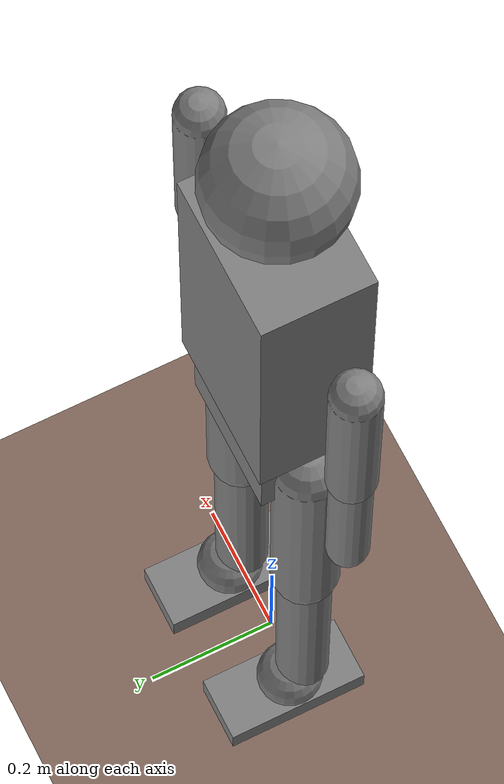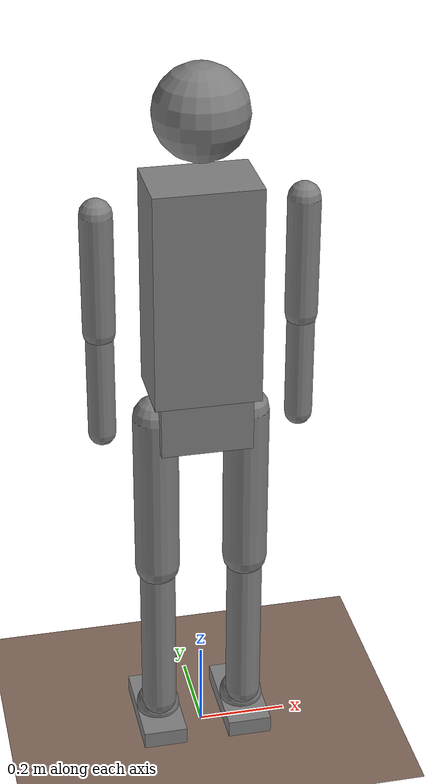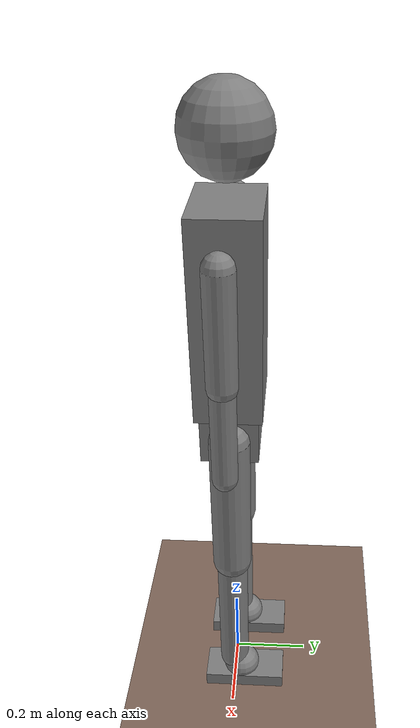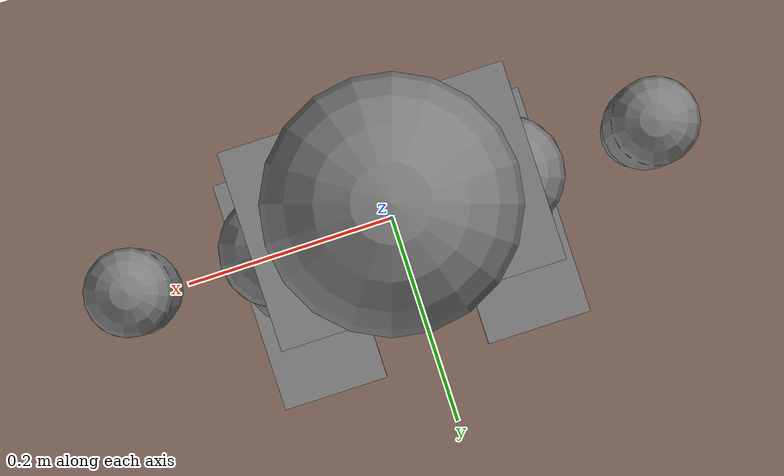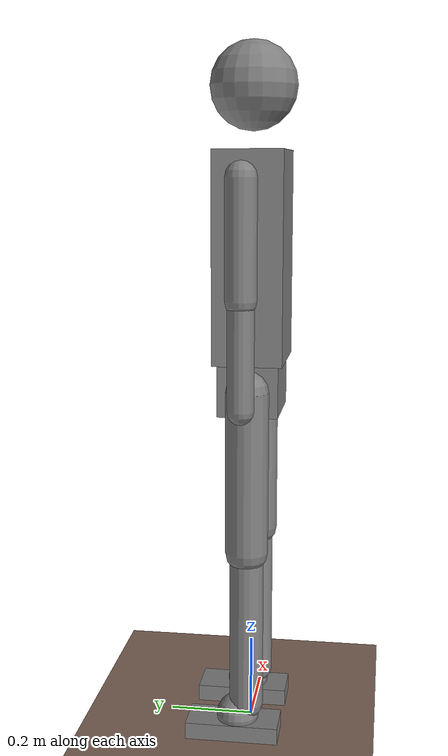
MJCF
<mujoco model="hab-bot-01-gait">
  <!-- angle=radian: MJCF defaults to DEGREES — leaving that would compile
       range="-1.5 1.5" as +/-1.5 deg and pin every joint at its limit -->
  <compiler angle="radian"/>
  <option gravity="0 0 -3.71" timestep="0.002"/>
  <default>
    <joint damping="1.2" armature="0.01"/>
    <geom friction="1.0 0.005 0.0001" density="900"/>
    <position kp="300" kv="18" forcerange="-150 150"/>
  </default>
  <worldbody>
    <geom name="floor" type="plane" size="20 20 0.1" rgba="0.5 0.4 0.35 1"/>
    <body name="pelvis" pos="0 0 0.84">
      <joint name="root_y" type="slide" axis="0 1 0" damping="0.5"/>
      <joint name="root_z" type="slide" axis="0 0 1" damping="2"/>
      <joint name="root_pitch" type="hinge" axis="1 0 0"
             stiffness="150" damping="30"/>
      <geom name="pelvis_g" type="box" size="0.10 0.07 0.06" mass="6"
            contype="0" conaffinity="0"/>
      <!-- torso + head: rigid with pelvis (visual torso pitch = root_pitch) -->
      <geom name="torso_g" type="box" size="0.115 0.08 0.24" pos="0 0 0.30"
            mass="14" contype="0" conaffinity="0"/>
      <geom name="head_g" type="sphere" size="0.10" pos="0 0 0.68" mass="3.5"
            contype="0" conaffinity="0"/>

      <!-- ============ legs (hip at z offset 0, thigh 0.38, shank 0.38) ==== -->
      <body name="thigh_L" pos="-0.10 0 0">
        <joint name="hip_L" type="hinge" axis="1 0 0" range="-1.2 1.2"/>
        <geom type="capsule" fromto="0 0 0  0 0 -0.38" size="0.05" mass="3.2"
              contype="0" conaffinity="0"/>
        <body name="shank_L" pos="0 0 -0.38">
          <joint name="knee_L" type="hinge" axis="1 0 0" range="-1.8 0.05"/>
          <geom type="capsule" fromto="0 0 0  0 0 -0.38" size="0.04" mass="2.2"
                contype="0" conaffinity="0"/>
          <body name="foot_L" pos="0 0 -0.38">
            <joint name="ank_L" type="hinge" axis="1 0 0" range="-0.8 0.8"/>
            <!-- round sole (point contact, can roll) breaks the flat-foot
                 closed-chain lock; box is visual-only -->
            <geom name="foot_L_g" type="sphere" size="0.05" pos="0 0.02 -0.03"
                  mass="0.9"/>
            <geom type="box" size="0.05 0.11 0.02" pos="0 0.03 -0.06" mass="0.05"
                  contype="0" conaffinity="0"/>
          </body>
        </body>
      </body>
      <body name="thigh_R" pos="0.10 0 0">
        <joint name="hip_R" type="hinge" axis="1 0 0" range="-1.2 1.2"/>
        <geom type="capsule" fromto="0 0 0  0 0 -0.38" size="0.05" mass="3.2"
              contype="0" conaffinity="0"/>
        <body name="shank_R" pos="0 0 -0.38">
          <joint name="knee_R" type="hinge" axis="1 0 0" range="-1.8 0.05"/>
          <geom type="capsule" fromto="0 0 0  0 0 -0.38" size="0.04" mass="2.2"
                contype="0" conaffinity="0"/>
          <body name="foot_R" pos="0 0 -0.38">
            <joint name="ank_R" type="hinge" axis="1 0 0" range="-0.8 0.8"/>
            <geom name="foot_R_g" type="sphere" size="0.05" pos="0 0.02 -0.03"
                  mass="0.9"/>
            <geom type="box" size="0.05 0.11 0.02" pos="0 0.03 -0.06" mass="0.05"
                  contype="0" conaffinity="0"/>
          </body>
        </body>
      </body>

      <!-- ============ arms (decorative dynamics: swing servo'd, no contact) -->
      <body name="uarm_L" pos="-0.215 0 0.48">
        <joint name="sh_L" type="hinge" axis="1 0 0" range="-1.5 1.5" damping="0.6"/>
        <geom type="capsule" fromto="0 0 0  0 0 -0.26" size="0.035" mass="1.1"
              contype="0" conaffinity="0"/>
        <body name="farm_L" pos="0 0 -0.26">
          <joint name="elb_L" type="hinge" axis="1 0 0" range="-0.1 2.0" damping="0.4"/>
          <geom type="capsule" fromto="0 0 0  0 0 -0.24" size="0.03" mass="0.7"
                contype="0" conaffinity="0"/>
        </body>
      </body>
      <body name="uarm_R" pos="0.215 0 0.48">
        <joint name="sh_R" type="hinge" axis="1 0 0" range="-1.5 1.5" damping="0.6"/>
        <geom type="capsule" fromto="0 0 0  0 0 -0.26" size="0.035" mass="1.1"
              contype="0" conaffinity="0"/>
        <body name="farm_R" pos="0 0 -0.26">
          <joint name="elb_R" type="hinge" axis="1 0 0" range="-0.1 2.0" damping="0.4"/>
          <geom type="capsule" fromto="0 0 0  0 0 -0.24" size="0.03" mass="0.7"
                contype="0" conaffinity="0"/>
        </body>
      </body>
    </body>
  </worldbody>

  <actuator>
    <position name="a_hip_L" joint="hip_L"/>
    <position name="a_hip_R" joint="hip_R"/>
    <position name="a_knee_L" joint="knee_L"/>
    <position name="a_knee_R" joint="knee_R"/>
    <position name="a_ank_L" joint="ank_L" kp="25" kv="1.5"/>
    <position name="a_ank_R" joint="ank_R" kp="25" kv="1.5"/>
    <position name="a_sh_L" joint="sh_L" kp="55" kv="5"/>
    <position name="a_sh_R" joint="sh_R" kp="55" kv="5"/>
    <position name="a_elb_L" joint="elb_L" kp="35" kv="3"/>
    <position name="a_elb_R" joint="elb_R" kp="35" kv="3"/>
  </actuator>
</mujoco>
